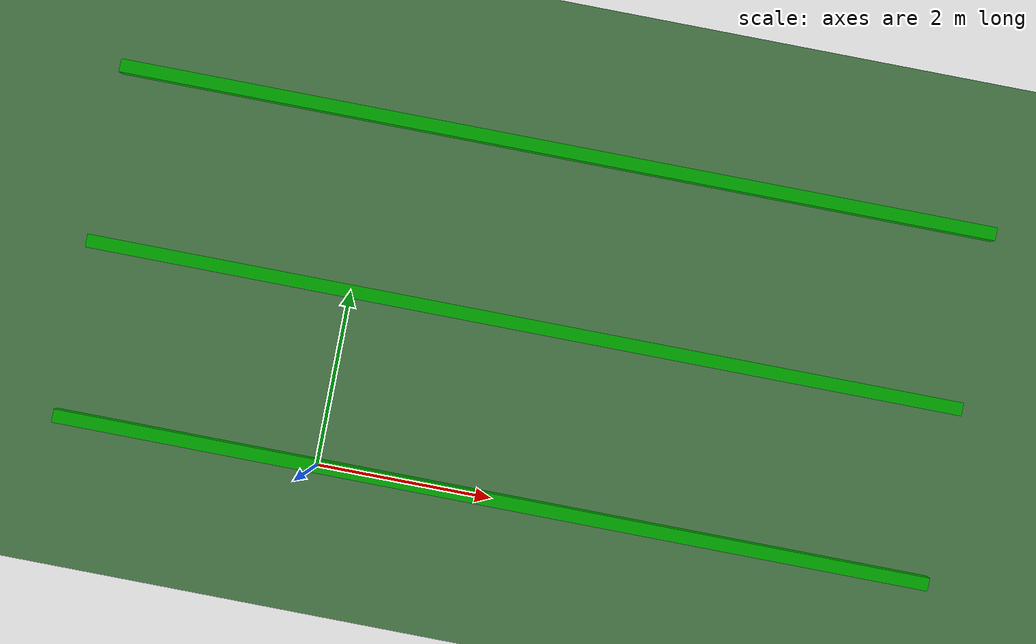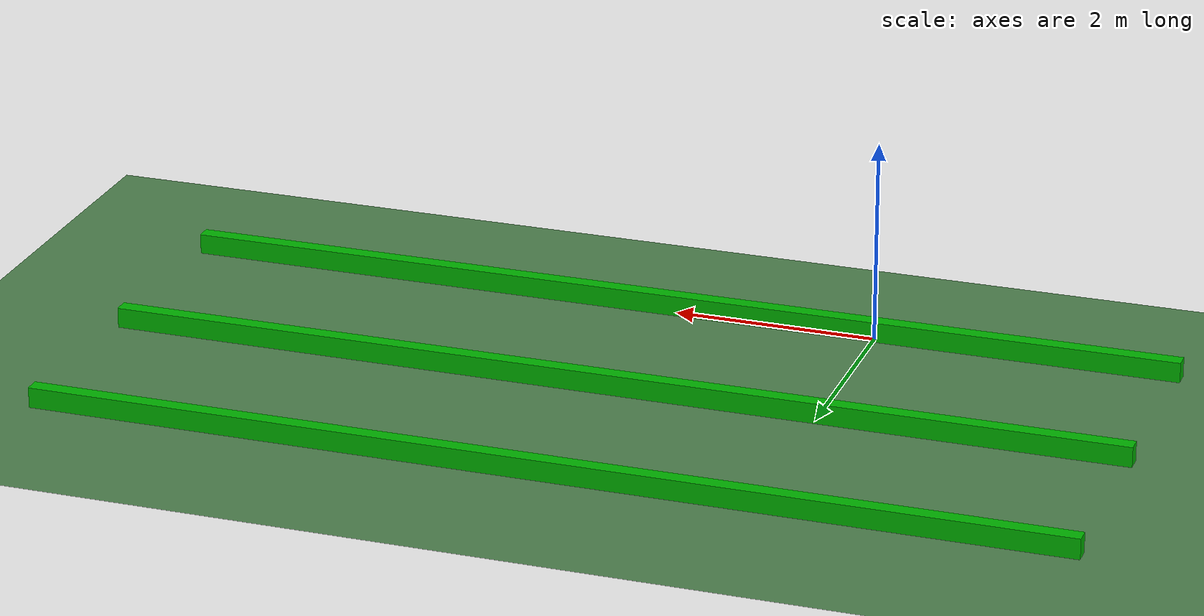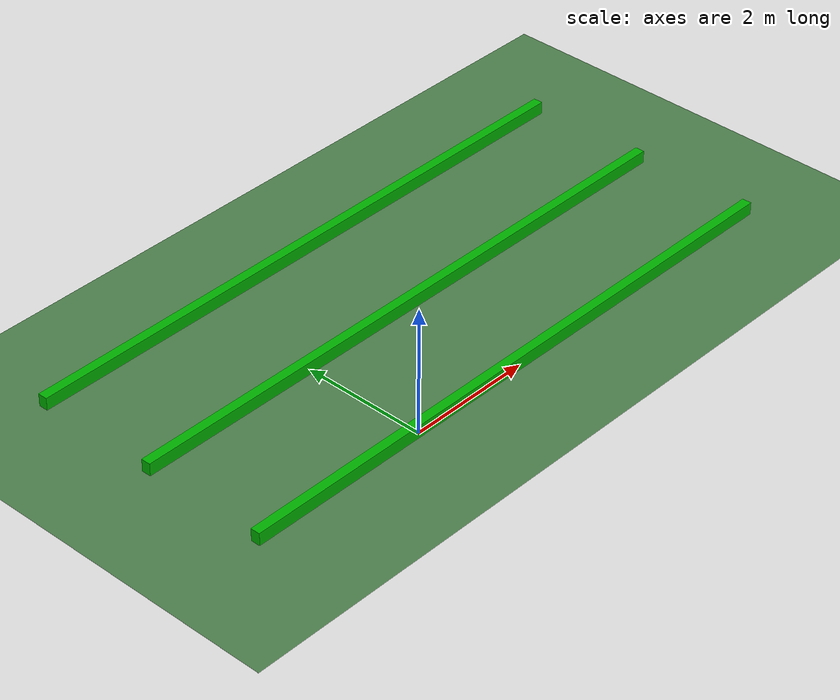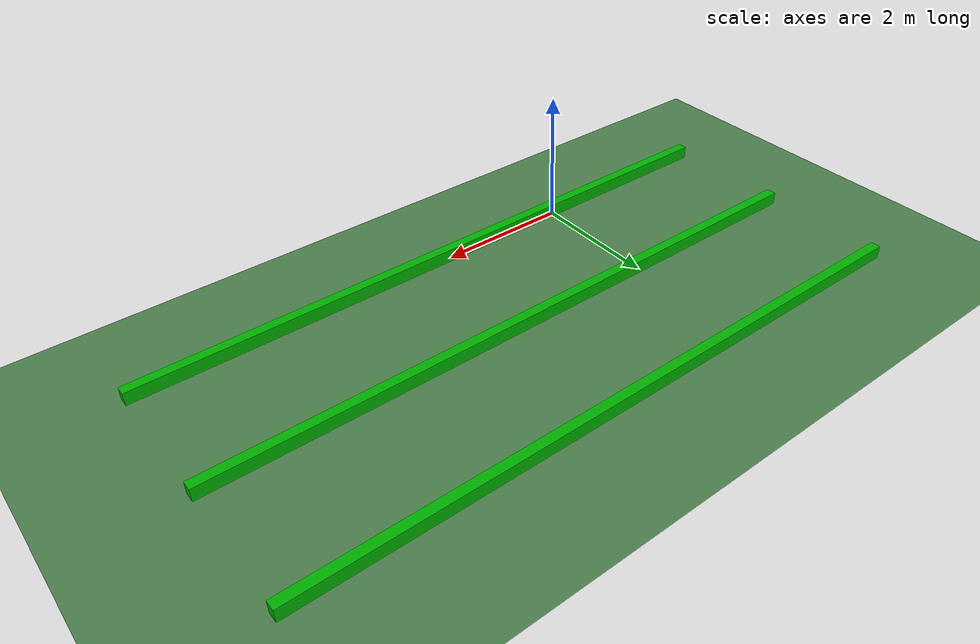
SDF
<?xml version="1.0" ?>
<sdf version="1.7">
  <world name="farm_world">
    <!-- Physics -->
    <physics name="1ms" type="ignored">
      <max_step_size>0.001</max_step_size>
      <real_time_factor>1.0</real_time_factor>
      <real_time_update_rate>1000.0</real_time_update_rate>
    </physics>

    <!-- Scene lighting -->
    <scene>
      <ambient>0.4 0.4 0.4 1.0</ambient>
      <background>0.7 0.7 0.7 1.0</background>
      <shadows>true</shadows>
    </scene>

    <!-- Sun -->
    <light type="directional" name="sun">
      <cast_shadows>true</cast_shadows>
      <pose>0 0 10 0 0 0</pose>
      <diffuse>0.8 0.8 0.8 1</diffuse>
      <specular>0.2 0.2 0.2 1</specular>
      <direction>-0.5 0.1 -0.9</direction>
    </light>

    <!-- Ground plane -->
    <model name="ground_plane">
      <static>true</static>
      <link name="link">
        <collision name="collision">
          <geometry>
            <plane>
              <normal>0 0 1</normal>
              <size>100 100</size>
            </plane>
          </geometry>
        </collision>
        <visual name="visual">
          <geometry>
            <plane>
              <normal>0 0 1</normal>
              <size>100 100</size>
            </plane>
          </geometry>
          <material>
            <ambient>0.3 0.5 0.3 1</ambient>
            <diffuse>0.3 0.5 0.3 1</diffuse>
            <specular>0.1 0.1 0.1 1</specular>
          </material>
        </visual>
      </link>
    </model>

    <!-- Crop rows -->
    <model name="crop_row1">
      <static>true</static>
      <pose>2 0 0.1 0 0 0</pose>
      <link name="link">
        <collision name="collision">
          <geometry>
            <box>
              <size>10 0.15 0.2</size>
            </box>
          </geometry>
        </collision>
        <visual name="visual">
          <geometry>
            <box>
              <size>10 0.15 0.2</size>
            </box>
          </geometry>
          <material>
            <ambient>0.0 0.5 0.0 1</ambient>
            <diffuse>0.0 0.7 0.0 1</diffuse>
            </material>
        </visual>
      </link>
    </model>

    <model name="crop_row2">
      <static>true</static>
      <pose>2 2 0.1 0 0 0</pose>
      <link name="link">
        <collision name="collision">
          <geometry>
            <box>
              <size>10 0.15 0.2</size>
            </box>
          </geometry>
        </collision>
        <visual name="visual">
          <geometry>
            <box>
              <size>10 0.15 0.2</size>
            </box>
          </geometry>
          <material>
            <ambient>0.0 0.5 0.0 1</ambient>
            <diffuse>0.0 0.7 0.0 1</diffuse>
          </material>
        </visual>
      </link>
    </model>

    <model name="crop_row3">
      <static>true</static>
      <pose>2 4 0.1 0 0 0</pose>
      <link name="link">
        <collision name="collision">
          <geometry>
            <box>
              <size>10 0.15 0.2</size>
            </box>
          </geometry>
        </collision>
        <visual name="visual">
          <geometry>
            <box>
              <size>10 0.15 0.2</size>
            </box>
          </geometry>
          <material>
            <ambient>0.0 0.5 0.0 1</ambient>
            <diffuse>0.0 0.7 0.0 1</diffuse>
          </material>
        </visual>
      </link>
    </model>
  </world>
</sdf>
